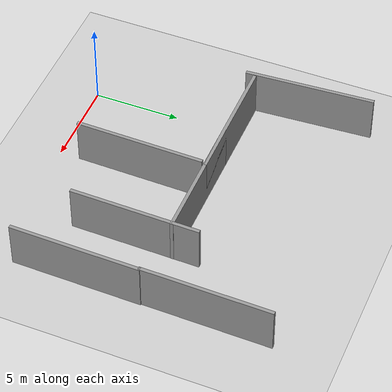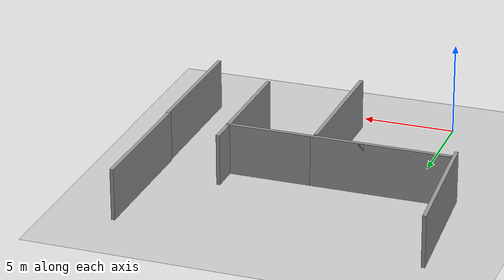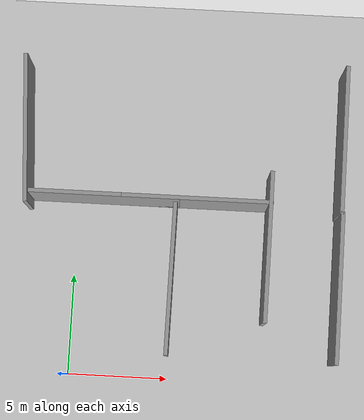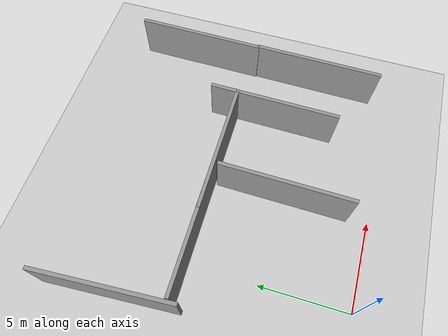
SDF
<sdf version="1.7">
 <world name="default">
  <model name="ground_plane">
   <static>1</static>
   <link name="link">
    <collision name="collision">
     <geometry><plane><normal>0 0 1</normal><size>100 100</size></plane></geometry>
     <surface><friction><ode><mu>100</mu><mu2>50</mu2></ode></friction></surface>
    </collision>
    <visual name="visual">
     <cast_shadows>0</cast_shadows>
     <geometry><plane><normal>0 0 1</normal><size>100 100</size></plane></geometry>
     <material>
      <script><uri>file://media/materials/scripts/gazebo.material</uri><name>Gazebo/Grey</name></script>
     </material>
    </visual>
   </link>
  </model>
  <model name="grey_wall_2_clone_0">
   <static>1</static>
   <link name="link">
    <pose>0 0 1.4 0 -0 0</pose>
    <collision name="collision"><geometry><box><size>7.5 0.2 2.8</size></box></geometry></collision>
    <visual name="visual">
     <cast_shadows>0</cast_shadows>
     <geometry><box><size>7.5 0.2 2.8</size></box></geometry>
     <material>
      <script>
       <uri>model://grey_wall/materials/scripts</uri>
       <uri>model://grey_wall/materials/textures</uri>
       <name>vrc/grey_wall</name>
      </script>
     </material>
    </visual>
   </link>
   <pose>13.2128 4.83723 0 0 -0 1.5595</pose>
  </model>
  <model name="grey_wall_2_clone_4_clone_0">
   <static>1</static>
   <link name="link">
    <pose>0 0 1.4 0 -0 0</pose>
    <collision name="collision"><geometry><box><size>7.5 0.2 2.8</size></box></geometry></collision>
    <visual name="visual">
     <cast_shadows>0</cast_shadows>
     <geometry><box><size>7.5 0.2 2.8</size></box></geometry>
     <material>
      <script>
       <uri>model://grey_wall/materials/scripts</uri>
       <uri>model://grey_wall/materials/textures</uri>
       <name>vrc/grey_wall</name>
      </script>
     </material>
    </visual>
   </link>
   <pose>13.2413 12.2078 0 0 -0 1.5595</pose>
  </model>
  <model name="grey_wall_2_clone_4_clone_clone_2">
   <static>1</static>
   <link name="link">
    <pose>0 0 1.4 0 -0 0</pose>
    <collision name="collision"><geometry><box><size>7.5 0.2 2.8</size></box></geometry></collision>
    <visual name="visual">
     <cast_shadows>0</cast_shadows>
     <geometry><box><size>7.5 0.2 2.8</size></box></geometry>
     <material>
      <script>
       <uri>model://grey_wall/materials/scripts</uri>
       <uri>model://grey_wall/materials/textures</uri>
       <name>vrc/grey_wall</name>
      </script>
     </material>
    </visual>
   </link>
   <pose>9.68061 6.6796 0 0 -0 1.5595</pose>
  </model>
  <model name="grey_wall_clone_clone_1">
   <static>1</static>
   <link name="link">
    <pose>0 0 1.4 0 -0 0</pose>
    <collision name="collision"><geometry><box><size>7.5 0.2 2.8</size></box></geometry></collision>
    <visual name="visual">
     <cast_shadows>0</cast_shadows>
     <geometry><box><size>7.5 0.2 2.8</size></box></geometry>
     <material>
      <script>
       <uri>model://grey_wall/materials/scripts</uri>
       <uri>model://grey_wall/materials/textures</uri>
       <name>vrc/grey_wall</name>
      </script>
     </material>
    </visual>
   </link>
   <pose>6.07063 8.86639 0 0 -0 0</pose>
  </model>
  <model name="grey_wall_clone_clone_4">
   <static>1</static>
   <link name="link">
    <pose>0 0 1.4 0 -0 0</pose>
    <collision name="collision"><geometry><box><size>7.5 0.2 2.8</size></box></geometry></collision>
    <visual name="visual">
     <cast_shadows>0</cast_shadows>
     <geometry><box><size>7.5 0.2 2.8</size></box></geometry>
     <material>
      <script>
       <uri>model://grey_wall/materials/scripts</uri>
       <uri>model://grey_wall/materials/textures</uri>
       <name>vrc/grey_wall</name>
      </script>
     </material>
    </visual>
   </link>
   <pose>1.45171 8.86639 0 0 -0 0</pose>
  </model>
  <model name="grey_wall_2_clone_4_clone_2_clone_2">
   <static>1</static>
   <link name="link">
    <pose>0 0 1.4 0 -0 0</pose>
    <collision name="collision"><geometry><box><size>7.5 0.2 2.8</size></box></geometry></collision>
    <visual name="visual">
     <cast_shadows>0</cast_shadows>
     <geometry><box><size>7.5 0.2 2.8</size></box></geometry>
     <material>
      <script>
       <uri>model://grey_wall/materials/scripts</uri>
       <uri>model://grey_wall/materials/textures</uri>
       <name>vrc/grey_wall</name>
      </script>
     </material>
    </visual>
   </link>
   <pose>4.9597 4.89053 0 0 -0 1.5595</pose>
  </model>
  <model name="grey_wall_2_clone_4_clone_2_clone_5_clone_0">
   <static>1</static>
   <link name="link">
    <pose>0 0 1.4 0 -0 0</pose>
    <collision name="collision"><geometry><box><size>7.5 0.2 2.8</size></box></geometry></collision>
    <visual name="visual">
     <cast_shadows>0</cast_shadows>
     <geometry><box><size>7.5 0.2 2.8</size></box></geometry>
     <material>
      <script>
       <uri>model://grey_wall/materials/scripts</uri>
       <uri>model://grey_wall/materials/textures</uri>
       <name>vrc/grey_wall</name>
      </script>
     </material>
    </visual>
   </link>
   <pose>-2.64371 12.0361 0 0 -0 1.63513</pose>
  </model>
 </world>
</sdf>
